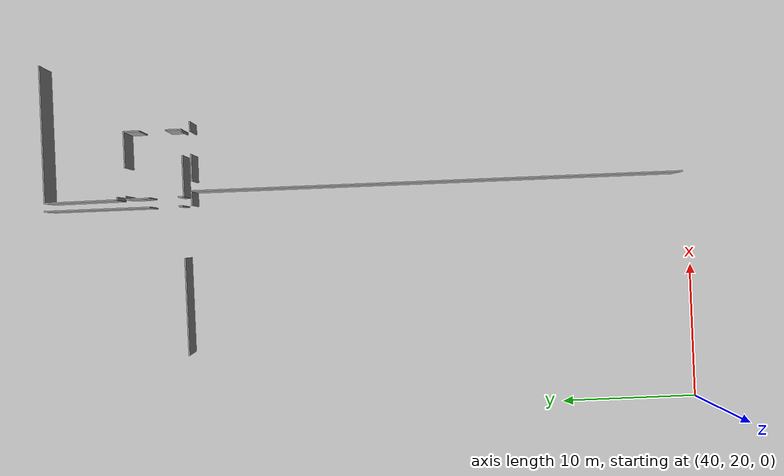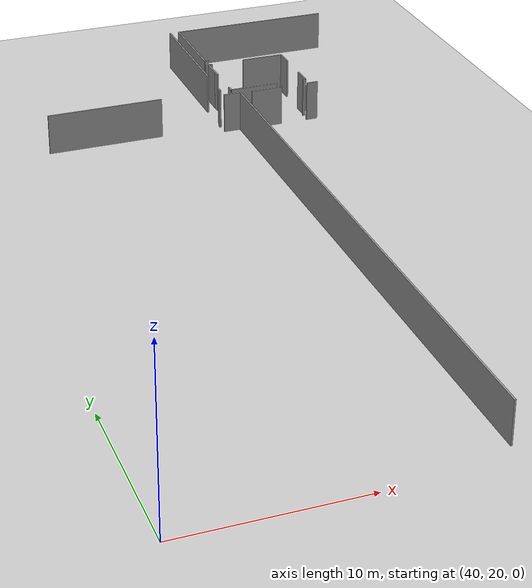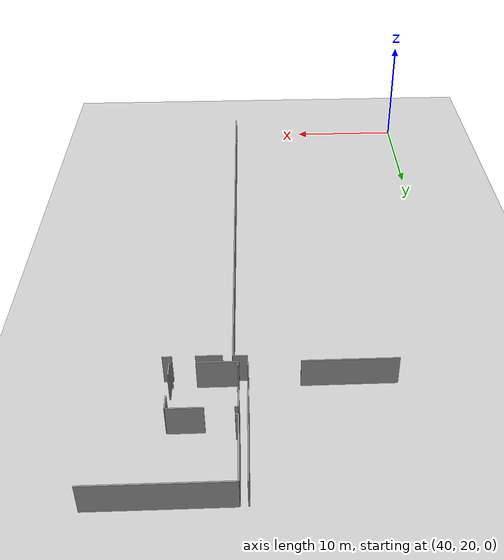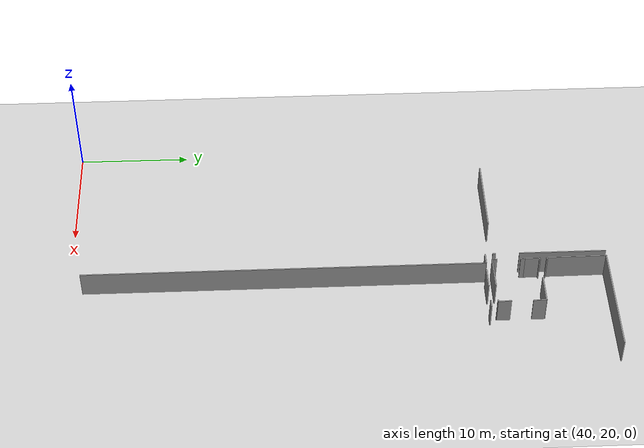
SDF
<sdf version="1.6">
 <world name="default">
  <model name="ground_plane">
   <static>1</static>
   <link name="link">
    <collision name="collision">
     <geometry><plane><normal>0 0 1</normal><size>100 100</size></plane></geometry>
     <surface><friction><ode><mu>100</mu><mu2>50</mu2></ode></friction></surface>
    </collision>
    <visual name="visual">
     <cast_shadows>0</cast_shadows>
     <geometry><plane><normal>0 0 1</normal><size>100 100</size></plane></geometry>
     <material>
      <script><uri>file://media/materials/scripts/gazebo.material</uri><name>Gazebo/Grey</name></script>
     </material>
    </visual>
   </link>
  </model>
  <model name="50036893">
   <static>1</static>
   <link name="Wall_305">
    <collision name="Wall_305_Collision">
     <geometry><box><size>1.96808207105 0.1 2.5</size></box></geometry>
     <pose>0.984041035526 0 1.25 0 0 0</pose>
    </collision>
    <visual name="Wall_305_Visual">
     <pose>0.984041035526 0 1.25 0 0 0</pose>
     <geometry><box><size>1.96808207105 0.1 2.5</size></box></geometry>
     <material>
      <script><uri>file://media/materials/scripts/gazebo.material</uri><name>Gazebo/Grey</name></script>
      <ambient>1 1 1 1</ambient>
     </material>
    </visual>
    <pose>131.90030244 -10.8799939131 0 0 0 0.0</pose>
   </link>
   <link name="Wall_306">
    <collision name="Wall_306_Collision">
     <geometry><box><size>0.712668894285 0.1 2.5</size></box></geometry>
     <pose>0.356334447143 0 1.25 0 0 0</pose>
    </collision>
    <visual name="Wall_306_Visual">
     <pose>0.356334447143 0 1.25 0 0 0</pose>
     <geometry><box><size>0.712668894285 0.1 2.5</size></box></geometry>
     <material>
      <script><uri>file://media/materials/scripts/gazebo.material</uri><name>Gazebo/Grey</name></script>
      <ambient>1 1 1 1</ambient>
     </material>
    </visual>
    <pose>135.5524135 -10.8799939131 0 0 0 0.0</pose>
   </link>
   <link name="Wall_469">
    <collision name="Wall_469_Collision">
     <geometry><box><size>1.06773524731 0.1 2.5</size></box></geometry>
     <pose>0.533867623655 0 1.25 0 0 0</pose>
    </collision>
    <visual name="Wall_469_Visual">
     <pose>0.533867623655 0 1.25 0 0 0</pose>
     <geometry><box><size>1.06773524731 0.1 2.5</size></box></geometry>
     <material>
      <script><uri>file://media/materials/scripts/gazebo.material</uri><name>Gazebo/Grey</name></script>
      <ambient>1 1 1 1</ambient>
     </material>
    </visual>
    <pose>130.102144981 -10.8206471084 0 0 0 0.0</pose>
   </link>
   <link name="Wall_470">
    <collision name="Wall_470_Collision">
     <geometry><box><size>35.9418452038 0.1 2.5</size></box></geometry>
     <pose>17.9709226019 0 1.25 0 0 0</pose>
    </collision>
    <visual name="Wall_470_Visual">
     <pose>17.9709226019 0 1.25 0 0 0</pose>
     <geometry><box><size>35.9418452038 0.1 2.5</size></box></geometry>
     <material>
      <script><uri>file://media/materials/scripts/gazebo.material</uri><name>Gazebo/Grey</name></script>
      <ambient>1 1 1 1</ambient>
     </material>
    </visual>
    <pose>131.169880229 -10.8206471084 0 0 0 -1.57079632679</pose>
   </link>
   <link name="Wall_483">
    <collision name="Wall_483_Collision">
     <geometry><box><size>7.75743895712 0.1 2.5</size></box></geometry>
     <pose>3.87871947856 0 1.25 0 0 0</pose>
    </collision>
    <visual name="Wall_483_Visual">
     <pose>3.87871947856 0 1.25 0 0 0</pose>
     <geometry><box><size>7.75743895712 0.1 2.5</size></box></geometry>
     <material>
      <script><uri>file://media/materials/scripts/gazebo.material</uri><name>Gazebo/Grey</name></script>
      <ambient>1 1 1 1</ambient>
     </material>
    </visual>
    <pose>130.097072605 -0.0 0 0 0 -1.57079632679</pose>
   </link>
   <link name="Wall_484">
    <collision name="Wall_484_Collision">
     <geometry><box><size>0.290139934186 0.1 2.5</size></box></geometry>
     <pose>0.145069967093 0 1.25 0 0 0</pose>
    </collision>
    <visual name="Wall_484_Visual">
     <pose>0.145069967093 0 1.25 0 0 0</pose>
     <geometry><box><size>0.290139934186 0.1 2.5</size></box></geometry>
     <material>
      <script><uri>file://media/materials/scripts/gazebo.material</uri><name>Gazebo/Grey</name></script>
      <ambient>1 1 1 1</ambient>
     </material>
    </visual>
    <pose>130.097072605 -9.86501138114 0 0 0 -1.57079632679</pose>
   </link>
   <link name="Wall_485">
    <collision name="Wall_485_Collision">
     <geometry><box><size>7.14194418704 0.1 2.5</size></box></geometry>
     <pose>3.57097209352 0 1.25 0 0 0</pose>
    </collision>
    <visual name="Wall_485_Visual">
     <pose>3.57097209352 0 1.25 0 0 0</pose>
     <geometry><box><size>7.14194418704 0.1 2.5</size></box></geometry>
     <material>
      <script><uri>file://media/materials/scripts/gazebo.material</uri><name>Gazebo/Grey</name></script>
      <ambient>1 1 1 1</ambient>
     </material>
    </visual>
    <pose>126.282645498 -10.1551513153 0 0 0 -3.13832561976</pose>
   </link>
   <link name="Wall_486">
    <collision name="Wall_486_Collision">
     <geometry><box><size>1.30081094619 0.1 2.5</size></box></geometry>
     <pose>0.650405473094 0 1.25 0 0 0</pose>
    </collision>
    <visual name="Wall_486_Visual">
     <pose>0.650405473094 0 1.25 0 0 0</pose>
     <geometry><box><size>1.30081094619 0.1 2.5</size></box></geometry>
     <material>
      <script><uri>file://media/materials/scripts/gazebo.material</uri><name>Gazebo/Grey</name></script>
      <ambient>1 1 1 1</ambient>
     </material>
    </visual>
    <pose>130.753945358 -7.31867839231 0 0 0 1.57079632679</pose>
   </link>
   <link name="Wall_487">
    <collision name="Wall_487_Collision">
     <geometry><box><size>0.233329317702 0.1 2.5</size></box></geometry>
     <pose>0.116664658851 0 1.25 0 0 0</pose>
    </collision>
    <visual name="Wall_487_Visual">
     <pose>0.116664658851 0 1.25 0 0 0</pose>
     <geometry><box><size>0.233329317702 0.1 2.5</size></box></geometry>
     <material>
      <script><uri>file://media/materials/scripts/gazebo.material</uri><name>Gazebo/Grey</name></script>
      <ambient>1 1 1 1</ambient>
     </material>
    </visual>
    <pose>130.753945358 -6.01786744612 0 0 0 0.0</pose>
   </link>
   <link name="Wall_488">
    <collision name="Wall_488_Collision">
     <geometry><box><size>2.6427081418 0.1 2.5</size></box></geometry>
     <pose>1.3213540709 0 1.25 0 0 0</pose>
    </collision>
    <visual name="Wall_488_Visual">
     <pose>1.3213540709 0 1.25 0 0 0</pose>
     <geometry><box><size>2.6427081418 0.1 2.5</size></box></geometry>
     <material>
      <script><uri>file://media/materials/scripts/gazebo.material</uri><name>Gazebo/Grey</name></script>
      <ambient>1 1 1 1</ambient>
     </material>
    </visual>
    <pose>133.061876652 -6.01786744612 0 0 0 0.0</pose>
   </link>
   <link name="Wall_489">
    <collision name="Wall_489_Collision">
     <geometry><box><size>1.16613935086 0.1 2.5</size></box></geometry>
     <pose>0.583069675431 0 1.25 0 0 0</pose>
    </collision>
    <visual name="Wall_489_Visual">
     <pose>0.583069675431 0 1.25 0 0 0</pose>
     <geometry><box><size>1.16613935086 0.1 2.5</size></box></geometry>
     <material>
      <script><uri>file://media/materials/scripts/gazebo.material</uri><name>Gazebo/Grey</name></script>
      <ambient>1 1 1 1</ambient>
     </material>
    </visual>
    <pose>135.704584794 -6.01786744612 0 0 0 -1.57079632679</pose>
   </link>
   <link name="Wall_490">
    <collision name="Wall_490_Collision">
     <geometry><box><size>1.17324067792 0.1 2.5</size></box></geometry>
     <pose>0.586620338962 0 1.25 0 0 0</pose>
    </collision>
    <visual name="Wall_490_Visual">
     <pose>0.586620338962 0 1.25 0 0 0</pose>
     <geometry><box><size>1.17324067792 0.1 2.5</size></box></geometry>
     <material>
      <script><uri>file://media/materials/scripts/gazebo.material</uri><name>Gazebo/Grey</name></script>
      <ambient>1 1 1 1</ambient>
     </material>
    </visual>
    <pose>135.704584794 -9.06991636919 0 0 0 -1.57079632679</pose>
   </link>
   <link name="Wall_491">
    <collision name="Wall_491_Collision">
     <geometry><box><size>0.152171294153 0.1 2.5</size></box></geometry>
     <pose>0.0760856470767 0 1.25 0 0 0</pose>
    </collision>
    <visual name="Wall_491_Visual">
     <pose>0.0760856470767 0 1.25 0 0 0</pose>
     <geometry><box><size>0.152171294153 0.1 2.5</size></box></geometry>
     <material>
      <script><uri>file://media/materials/scripts/gazebo.material</uri><name>Gazebo/Grey</name></script>
      <ambient>1 1 1 1</ambient>
     </material>
    </visual>
    <pose>135.704584794 -10.2431570471 0 0 0 3.14159265359</pose>
   </link>
   <link name="Wall_492">
    <collision name="Wall_492_Collision">
     <geometry><box><size>3.03328113013 0.1 2.5</size></box></geometry>
     <pose>1.51664056506 0 1.25 0 0 0</pose>
    </collision>
    <visual name="Wall_492_Visual">
     <pose>1.51664056506 0 1.25 0 0 0</pose>
     <geometry><box><size>3.03328113013 0.1 2.5</size></box></geometry>
     <material>
      <script><uri>file://media/materials/scripts/gazebo.material</uri><name>Gazebo/Grey</name></script>
      <ambient>1 1 1 1</ambient>
     </material>
    </visual>
    <pose>133.815124559 -10.2431570471 0 0 0 3.14159265359</pose>
   </link>
   <link name="Wall_493">
    <collision name="Wall_493_Collision">
     <geometry><box><size>0.423036197747 0.1 2.5</size></box></geometry>
     <pose>0.211518098873 0 1.25 0 0 0</pose>
    </collision>
    <visual name="Wall_493_Visual">
     <pose>0.211518098873 0 1.25 0 0 0</pose>
     <geometry><box><size>0.423036197747 0.1 2.5</size></box></geometry>
     <material>
      <script><uri>file://media/materials/scripts/gazebo.material</uri><name>Gazebo/Grey</name></script>
      <ambient>1 1 1 1</ambient>
     </material>
    </visual>
    <pose>130.781843428 -10.2431570471 0 0 0 1.57079632679</pose>
   </link>
   <link name="Wall_494">
    <collision name="Wall_494_Collision">
     <geometry><box><size>0.404470819593 0.1 2.5</size></box></geometry>
     <pose>0.202235409797 0 1.25 0 0 0</pose>
    </collision>
    <visual name="Wall_494_Visual">
     <pose>0.202235409797 0 1.25 0 0 0</pose>
     <geometry><box><size>0.404470819593 0.1 2.5</size></box></geometry>
     <material>
      <script><uri>file://media/materials/scripts/gazebo.material</uri><name>Gazebo/Grey</name></script>
      <ambient>1 1 1 1</ambient>
     </material>
    </visual>
    <pose>130.781843428 -7.72218594064 0 0 0 1.63982538237</pose>
   </link>
   <link name="Wall_495">
    <collision name="Wall_495_Collision">
     <geometry><box><size>10.0661311083 0.1 2.5</size></box></geometry>
     <pose>5.03306555413 0 1.25 0 0 0</pose>
    </collision>
    <visual name="Wall_495_Visual">
     <pose>5.03306555413 0 1.25 0 0 0</pose>
     <geometry><box><size>10.0661311083 0.1 2.5</size></box></geometry>
     <material>
      <script><uri>file://media/materials/scripts/gazebo.material</uri><name>Gazebo/Grey</name></script>
      <ambient>1 1 1 1</ambient>
     </material>
    </visual>
    <pose>130.69307684 -0.0459050070696 0 0 0 0.0</pose>
   </link>
   <link name="Wall_498">
    <collision name="Wall_498_Collision">
     <geometry><box><size>0.22825694123 0.1 2.5</size></box></geometry>
     <pose>0.114128470615 0 1.25 0 0 0</pose>
    </collision>
    <visual name="Wall_498_Visual">
     <pose>0.114128470615 0 1.25 0 0 0</pose>
     <geometry><box><size>0.22825694123 0.1 2.5</size></box></geometry>
     <material>
      <script><uri>file://media/materials/scripts/gazebo.material</uri><name>Gazebo/Grey</name></script>
      <ambient>1 1 1 1</ambient>
     </material>
    </visual>
    <pose>130.954304228 -5.37342201538 0 0 0 3.14159265359</pose>
   </link>
   <link name="Wall_499">
    <collision name="Wall_499_Collision">
     <geometry><box><size>5.32761902957 0.1 2.5</size></box></geometry>
     <pose>2.66380951479 0 1.25 0 0 0</pose>
    </collision>
    <visual name="Wall_499_Visual">
     <pose>2.66380951479 0 1.25 0 0 0</pose>
     <geometry><box><size>5.32761902957 0.1 2.5</size></box></geometry>
     <material>
      <script><uri>file://media/materials/scripts/gazebo.material</uri><name>Gazebo/Grey</name></script>
      <ambient>1 1 1 1</ambient>
     </material>
    </visual>
    <pose>130.726047287 -5.37342201538 0 0 0 1.57698495578</pose>
   </link>
   <pose>-74.25 67.8925905261 0 0 0 0</pose>
  </model>
 </world>
</sdf>
